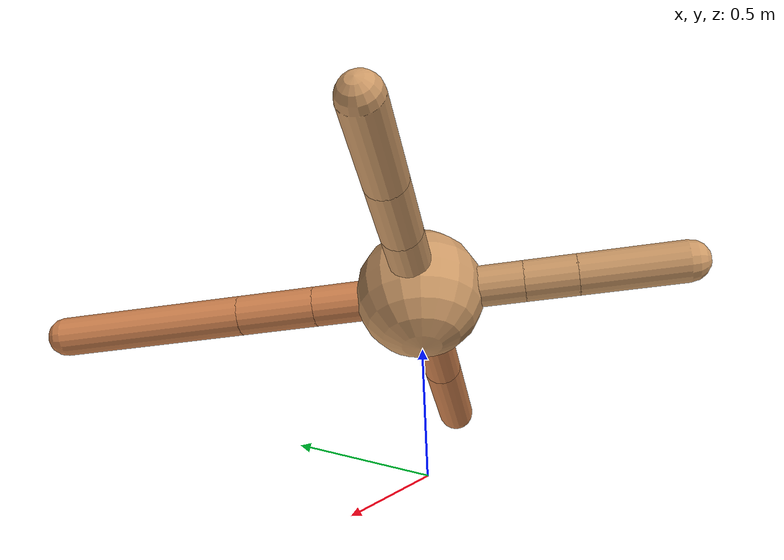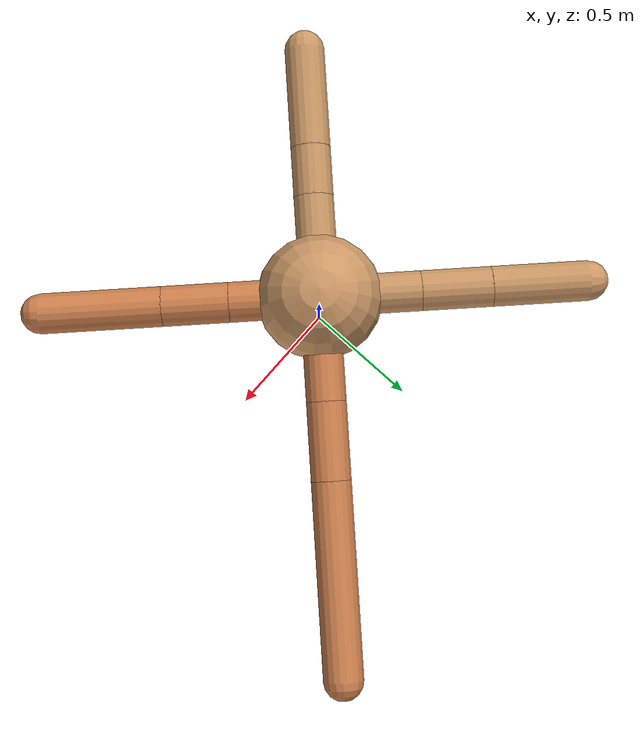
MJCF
<mujoco model="ant">
  <compiler angle="degree" coordinate="local" inertiafromgeom="true" />
  <option integrator="RK4" timestep="0.01" />
  <custom>
    <numeric data="0.0 0.0 0.55 1.0 0.0 0.0 0.0 0.0 1.0 0.0 -1.0 0.0 -1.0 0.0 1.0" name="init_qpos" />
  </custom>
  <default>
    <joint armature="1" damping="1" limited="true" />
    <geom conaffinity="0" condim="3" density="5.0" friction="1.5 0.1 0.1" margin="0.01" rgba="0.8 0.6 0.4 1" />
  </default>
  <worldbody>
    <body name="torso" pos="0 0 0.75">
      <geom name="torso_geom" pos="0 0 0" size="0.25" type="sphere" />

      <body name="front_left_leg" pos="0 0 0">
        <geom fromto="0.0 0.0 0.0 0.2948777059486595 0.2948777059486595 0.0" name="aux_1_geom" size="0.08" type="capsule" rgba=".8 .5 .3 1" />
        <body name="aux_1" pos="0.2948777059486595 0.2948777059486595 0.0">
          <joint axis="0 0 1" name="hip_1" pos="0.0 0.0 0.0" range="-40 40" type="hinge" />
          <geom fromto="0.0 0.0 0.0 0.21978968495737125 0.21978968495737125 0.0" name="left_leg_geom" size="0.08" type="capsule" rgba=".8 .5 .3 1" />
          <body pos="0.21978968495737125 0.21978968495737125 0.0" name="front_left_foot">
            <joint axis="-1 1 0" name="ankle_1" pos="0.0 0.0 0.0" range="30 100" type="hinge" />
            <geom fromto="0.0 0.0 0.0 0.5450423304037723 0.5450423304037723 0.0" name="left_ankle_geom" size="0.08" type="capsule" rgba=".8 .5 .3 1" />
          </body>
        </body>
      </body>
      <body name="front_right_leg" pos="0 0 0">
        <geom fromto="0.0 0.0 0.0 -0.2841167060665167 0.2841167060665167 0.0" name="aux_2_geom" size="0.08" type="capsule" />
        <body name="aux_2" pos="-0.2841167060665167 0.2841167060665167 0.0">
          <joint axis="0 0 1" name="hip_2" pos="0.0 0.0 0.0" range="-40 40" type="hinge" />
          <geom fromto="0.0 0.0 0.0 -0.19790273171856684 0.19790273171856684 0.0" name="right_leg_geom" size="0.08" type="capsule" />
          <body pos="-0.19790273171856684 0.19790273171856684 0.0" name="front_right_foot">
            <joint axis="1 1 0" name="ankle_2" pos="0.0 0.0 0.0" range="-100 -30" type="hinge" />
            <geom fromto="0.0 0.0 0.0 -0.27005729804210565 0.27005729804210565 0.0" name="right_ankle_geom" size="0.08" type="capsule" />
          </body>
        </body>
      </body>
      <body name="left_back_leg" pos="0 0 0">
        <geom fromto="0.0 0.0 0.0 -0.28403330341135874 -0.28403330341135874 0.0" name="aux_3_geom" size="0.08" type="capsule" />
        <body name="aux_3" pos="-0.28403330341135874 -0.28403330341135874 0.0">
          <joint axis="0 0 1" name="hip_3" pos="0.0 0.0 0.0" range="-40 40" type="hinge" />
          <geom fromto="0.0 0.0 0.0 -0.14107285659276272 -0.14107285659276272 0.0" name="back_leg_geom" size="0.08" type="capsule" />
          <body pos="-0.14107285659276272 -0.14107285659276272 0.0" name="left_back_foot">
            <joint axis="-1 1 0" name="ankle_3" pos="0.0 0.0 0.0" range="-100 -30" type="hinge" />
            <geom fromto="0.0 0.0 0.0 -0.28142726748528757 -0.28142726748528757 0.0" name="third_ankle_geom" size="0.08" type="capsule" />
          </body>
        </body>
      </body>
      <body name="right_back_leg" pos="0 0 0">
        <geom fromto="0.0 0.0 0.0 0.2533724028115015 -0.2533724028115015 0.0" name="aux_4_geom" size="0.08" type="capsule" rgba=".8 .5 .3 1" />
        <body name="aux_4" pos="0.2533724028115015 -0.2533724028115015 0.0">
          <joint axis="0 0 1" name="hip_4" pos="0.0 0.0 0.0" range="-40 40" type="hinge" />
          <geom fromto="0.0 0.0 0.0 0.18736732221475705 -0.18736732221475705 0.0" name="rightback_leg_geom" size="0.08" type="capsule" rgba=".8 .5 .3 1" />
          <body pos="0.18736732221475705 -0.18736732221475705 0.0" name="right_back_foot">
            <joint axis="1 1 0" name="ankle_4" pos="0.0 0.0 0.0" range="30 100" type="hinge" />
            <geom fromto="0.0 0.0 0.0 0.34004911070794336 -0.34004911070794336 0.0" name="fourth_ankle_geom" size="0.08" type="capsule" rgba=".8 .5 .3 1" />
          </body>
        </body>
      </body>
    </body>
  </worldbody>
  <actuator>
    <motor ctrllimited="true" ctrlrange="-1.0 1.0" joint="hip_4" gear="150" />
    <motor ctrllimited="true" ctrlrange="-1.0 1.0" joint="ankle_4" gear="150" />
    <motor ctrllimited="true" ctrlrange="-1.0 1.0" joint="hip_1" gear="150" />
    <motor ctrllimited="true" ctrlrange="-1.0 1.0" joint="ankle_1" gear="150" />
    <motor ctrllimited="true" ctrlrange="-1.0 1.0" joint="hip_2" gear="150" />
    <motor ctrllimited="true" ctrlrange="-1.0 1.0" joint="ankle_2" gear="150" />
    <motor ctrllimited="true" ctrlrange="-1.0 1.0" joint="hip_3" gear="150" />
    <motor ctrllimited="true" ctrlrange="-1.0 1.0" joint="ankle_3" gear="150" />
  </actuator>
</mujoco>
